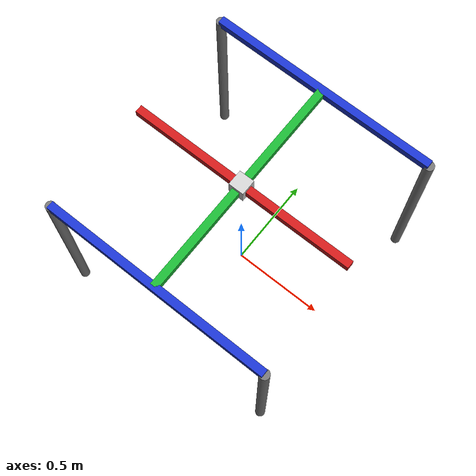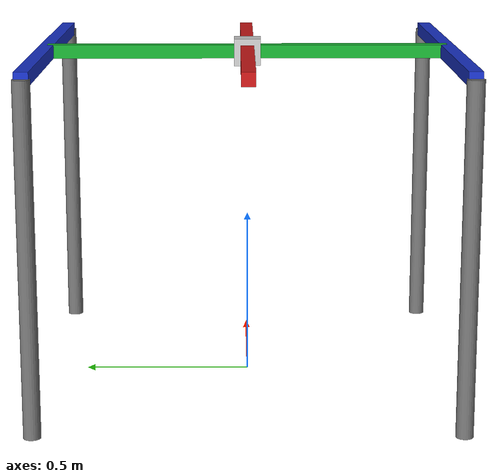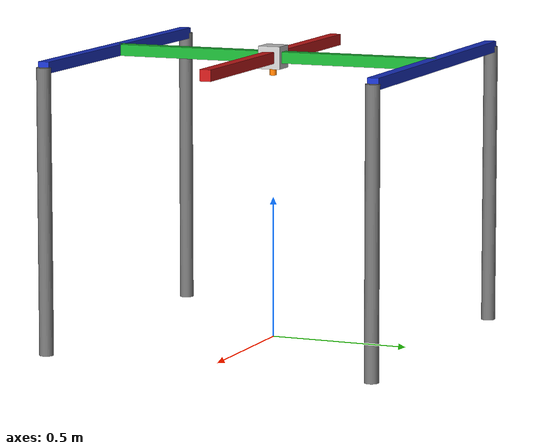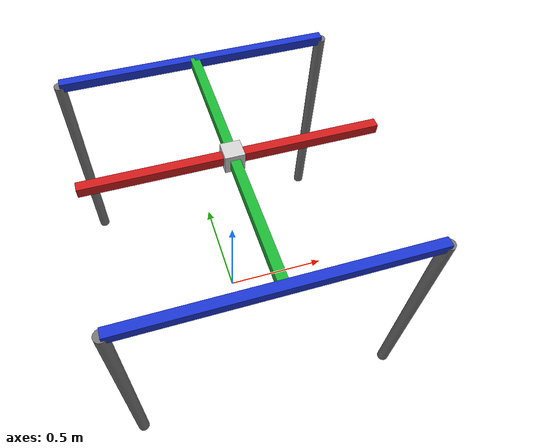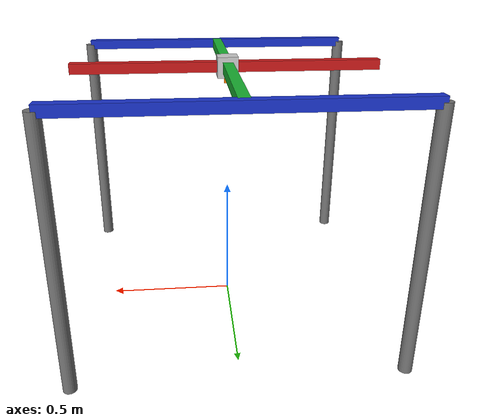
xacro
<?xml version="1.0" ?>
<robot name="xyz_gantry" xmlns:xacro="http://ros.org/wiki/xacro">

  <xacro:property name="RAIL_X"    value="1.2"/>  <!-- X-rail total length -->
  <xacro:property name="RAIL_Y"    value="1.2"/>  <!-- Y-rail total length -->
  <xacro:property name="RAIL_Z"    value="0.7"/>  <!-- Z-stroke total length -->
  <xacro:property name="RAIL_W"    value="0.04"/>  <!-- rail cross-section width -->
  <xacro:property name="CARRIAGE_S" value="0.08"/> <!-- carriage cube side -->
  <xacro:property name="GANTRY_H"  value="1.0"/>  <!-- gantry frame height -->

  <!-- world -->
  <link name="world"/>
  <joint name="world_to_base" type="fixed">
    <parent link="world"/>
    <child  link="base_link"/>
    <origin xyz="0 0 0" rpy="0 0 0"/>
  </joint>

  <!-- gantry frame (fixed) -->
  <link name="base_link">
    <inertial>
      <origin xyz="0 0 ${GANTRY_H/2}" rpy="0 0 0"/>
      <mass value="30.0"/>
      <inertia ixx="5.0" ixy="0" ixz="0" iyy="5.0" iyz="0" izz="2.0"/>
    </inertial>

    <!-- four vertical posts -->
    <xacro:macro name="post" params="px py">
      <visual>
        <origin xyz="${px} ${py} ${GANTRY_H/2}" rpy="0 0 0"/>
        <geometry><cylinder radius="0.025" length="${GANTRY_H}"/></geometry>
        <material name="frame_grey"><color rgba="0.45 0.45 0.45 1"/></material>
      </visual>
    </xacro:macro>
    <xacro:post px="${ RAIL_X/2}" py="${ RAIL_Y/2}"/>
    <xacro:post px="${-RAIL_X/2}" py="${ RAIL_Y/2}"/>
    <xacro:post px="${ RAIL_X/2}" py="${-RAIL_Y/2}"/>
    <xacro:post px="${-RAIL_X/2}" py="${-RAIL_Y/2}"/>

    <!-- X-rails at top (two rails, one at each Y side) -->
    <visual>
      <origin xyz="0 ${ RAIL_Y/2} ${GANTRY_H}" rpy="0 0 0"/>
      <geometry><box size="${RAIL_X} ${RAIL_W} ${RAIL_W}"/></geometry>
      <material name="rail_blue"><color rgba="0.1 0.2 0.8 1"/></material>
    </visual>
    <visual>
      <origin xyz="0 ${-RAIL_Y/2} ${GANTRY_H}" rpy="0 0 0"/>
      <geometry><box size="${RAIL_X} ${RAIL_W} ${RAIL_W}"/></geometry>
      <material name="rail_blue"><color rgba="0.1 0.2 0.8 1"/></material>
    </visual>

    <collision>
      <origin xyz="0 0 ${GANTRY_H/2}" rpy="0 0 0"/>
      <geometry><box size="${RAIL_X + 0.05} ${RAIL_Y + 0.05} ${RAIL_W}"/></geometry>
    </collision>
  </link>

  <!-- ============================================================ J0: Z stroke (prismatic +Z or -Z) -->
  <!-- This joint represents the vertical axis; origin at top center of gantry -->
  <joint name="JOINT_0_ACT" type="prismatic">
    <parent link="base_link"/>
    <child  link="link_z_carriage"/>
    <origin xyz="0 0 ${GANTRY_H}" rpy="0 0 0"/>
    <axis xyz="0 0 1"/>
    <limit lower="${-RAIL_Z * 0.8}" upper="0.0" effort="200" velocity="1.0"/>
    <dynamics damping="0.2" friction="0.05"/>
  </joint>

  <!-- Z carriage block + Y rail -->
  <link name="link_z_carriage">
    <inertial>
      <origin xyz="0 0 0" rpy="0 0 0"/>
      <mass value="3.0"/>
      <inertia ixx="0.05" ixy="0" ixz="0" iyy="0.05" iyz="0" izz="0.01"/>
    </inertial>
    <!-- Z carriage -->
    <visual>
      <origin xyz="0 0 0" rpy="0 0 0"/>
      <geometry><box size="${CARRIAGE_S} ${CARRIAGE_S} ${CARRIAGE_S}"/></geometry>
      <material name="carriage_silver"><color rgba="0.8 0.8 0.8 1"/></material>
    </visual>
    <!-- Y rail along this carriage -->
    <visual>
      <origin xyz="0 0 0" rpy="0 0 0"/>
      <geometry><box size="${RAIL_W} ${RAIL_Y} ${RAIL_W}"/></geometry>
      <material name="rail_green"><color rgba="0.1 0.7 0.2 1"/></material>
    </visual>
    <collision>
      <origin xyz="0 0 0" rpy="0 0 0"/>
      <geometry><box size="${CARRIAGE_S} ${CARRIAGE_S} ${CARRIAGE_S}"/></geometry>
    </collision>
  </link>

  <!-- ============================================================ J1: -Y stroke (prismatic -Y) -->
  <joint name="JOINT_1_ACT" type="prismatic">
    <parent link="link_z_carriage"/>
    <child  link="link_y_carriage"/>
    <origin xyz="0 0 0" rpy="0 0 0"/>
    <axis xyz="0 -1 0"/>
    <limit lower="${-RAIL_Y * 0.4}" upper="${RAIL_Y * 0.4}" effort="150" velocity="1.0"/>
    <dynamics damping="0.1" friction="0.03"/>
  </joint>

  <!-- Y carriage + X rail -->
  <link name="link_y_carriage">
    <inertial>
      <origin xyz="0 0 0" rpy="0 0 0"/>
      <mass value="2.0"/>
      <inertia ixx="0.02" ixy="0" ixz="0" iyy="0.02" iyz="0" izz="0.005"/>
    </inertial>
    <visual>
      <origin xyz="0 0 0" rpy="0 0 0"/>
      <geometry><box size="${CARRIAGE_S} ${CARRIAGE_S} ${CARRIAGE_S}"/></geometry>
      <material name="carriage_silver"><color rgba="0.8 0.8 0.8 1"/></material>
    </visual>
    <!-- X rail -->
    <visual>
      <origin xyz="0 0 0" rpy="0 0 0"/>
      <geometry><box size="${RAIL_X} ${RAIL_W} ${RAIL_W}"/></geometry>
      <material name="rail_red"><color rgba="0.8 0.1 0.1 1"/></material>
    </visual>
    <collision>
      <origin xyz="0 0 0" rpy="0 0 0"/>
      <geometry><box size="${CARRIAGE_S} ${CARRIAGE_S} ${CARRIAGE_S}"/></geometry>
    </collision>
  </link>

  <!-- ============================================================ J2: X stroke (prismatic X) -->
  <joint name="JOINT_2_ACT" type="prismatic">
    <parent link="link_y_carriage"/>
    <child  link="link_x_carriage"/>
    <origin xyz="0 0 0" rpy="0 0 0"/>
    <axis xyz="1 0 0"/>
    <limit lower="${-RAIL_X * 0.4}" upper="${RAIL_X * 0.4}" effort="150" velocity="1.0"/>
    <dynamics damping="0.1" friction="0.03"/>
  </joint>

  <!-- TCP carriage -->
  <link name="link_x_carriage">
    <inertial>
      <origin xyz="0 0 0" rpy="0 0 0"/>
      <mass value="0.5"/>
      <inertia ixx="0.001" ixy="0" ixz="0" iyy="0.001" iyz="0" izz="0.001"/>
    </inertial>
    <visual>
      <origin xyz="0 0 0" rpy="0 0 0"/>
      <geometry><box size="${CARRIAGE_S * 0.8} ${CARRIAGE_S * 0.8} ${CARRIAGE_S * 0.8}"/></geometry>
      <material name="carriage_silver"><color rgba="0.8 0.8 0.8 1"/></material>
    </visual>
    <!-- TCP marker -->
    <visual>
      <origin xyz="0 0 -0.04" rpy="0 0 0"/>
      <geometry><cylinder radius="0.012" length="0.05"/></geometry>
      <material name="orange"><color rgba="1.0 0.5 0.0 1"/></material>
    </visual>
    <collision>
      <origin xyz="0 0 0" rpy="0 0 0"/>
      <geometry><box size="${CARRIAGE_S * 0.8} ${CARRIAGE_S * 0.8} ${CARRIAGE_S * 0.8}"/></geometry>
    </collision>
  </link>

</robot>
